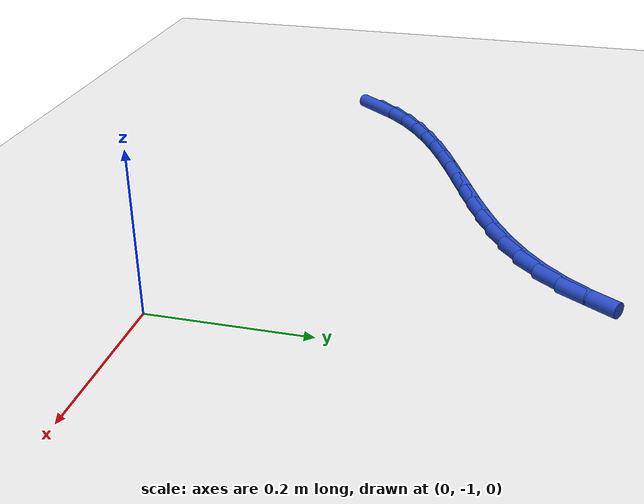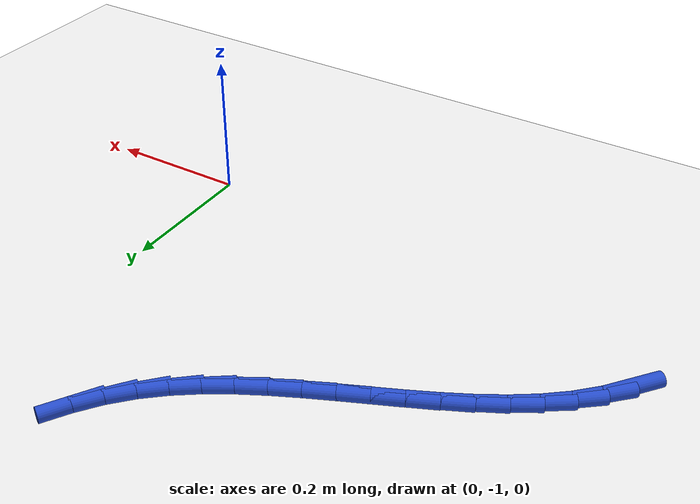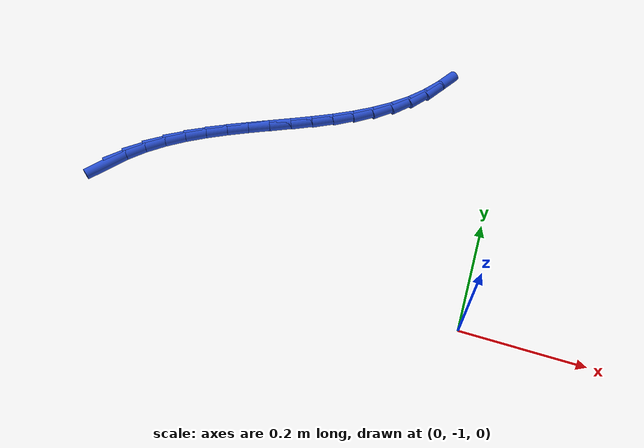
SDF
<sdf version="1.6">
 <world name="default">
  <model name="ground_plane">
   <static>1</static>
   <link name="link">
    <collision name="collision">
     <geometry><plane><normal>0 0 1</normal><size>100 100</size></plane></geometry>
     <surface><friction><ode><mu>100</mu><mu2>50</mu2></ode></friction></surface>
    </collision>
    <visual name="visual">
     <cast_shadows>0</cast_shadows>
     <geometry><plane><normal>0 0 1</normal><size>100 100</size></plane></geometry>
     <material>
      <script><uri>file://media/materials/scripts/gazebo.material</uri><name>Gazebo/WhiteGlow</name></script>
     </material>
    </visual>
   </link>
  </model>
  <model name="line">
   <link name="link_179">
    <pose>-0.6691251468968359 -0.8806108402283135 0.01 0 1.57 0.9010606598830255</pose>
    <collision name="collision">
     <geometry><cylinder><radius>0.01</radius><length>0.08</length></cylinder></geometry>
    </collision>
    <visual name="visual">
     <material>
      <script><name>Gazebo/Blue</name><uri>file://media/materials/scripts/gazebo.material</uri></script>
     </material>
     <geometry><cylinder><radius>0.01</radius><length>0.08</length></cylinder></geometry>
    </visual>
   </link>
   <link name="link_180">
    <pose>-0.645915633719968 -0.8512993863819421 0.01 0 1.57 0.7836660270477271</pose>
    <collision name="collision">
     <geometry><cylinder><radius>0.01</radius><length>0.08</length></cylinder></geometry>
    </collision>
    <visual name="visual">
     <material>
      <script><name>Gazebo/Blue</name><uri>file://media/materials/scripts/gazebo.material</uri></script>
     </material>
     <geometry><cylinder><radius>0.01</radius><length>0.08</length></cylinder></geometry>
    </visual>
   </link>
   <link name="link_181">
    <pose>-0.6195900926155167 -0.8250648865260314 0.01 0 1.57 0.6808556602758347</pose>
    <collision name="collision">
     <geometry><cylinder><radius>0.01</radius><length>0.08</length></cylinder></geometry>
    </collision>
    <visual name="visual">
     <material>
      <script><name>Gazebo/Blue</name><uri>file://media/materials/scripts/gazebo.material</uri></script>
     </material>
     <geometry><cylinder><radius>0.01</radius><length>0.08</length></cylinder></geometry>
    </visual>
   </link>
   <link name="link_182">
    <pose>-0.5905330021735388 -0.8015263895897069 0.01 0 1.57 0.5959423116595325</pose>
    <collision name="collision">
     <geometry><cylinder><radius>0.01</radius><length>0.08</length></cylinder></geometry>
    </collision>
    <visual name="visual">
     <material>
      <script><name>Gazebo/Blue</name><uri>file://media/materials/scripts/gazebo.material</uri></script>
     </material>
     <geometry><cylinder><radius>0.01</radius><length>0.08</length></cylinder></geometry>
    </visual>
   </link>
   <link name="link_183">
    <pose>-0.5591733542972394 -0.7802583891467804 0.01 0 1.57 0.52890403713709</pose>
    <collision name="collision">
     <geometry><cylinder><radius>0.01</radius><length>0.08</length></cylinder></geometry>
    </collision>
    <visual name="visual">
     <material>
      <script><name>Gazebo/Blue</name><uri>file://media/materials/scripts/gazebo.material</uri></script>
     </material>
     <geometry><cylinder><radius>0.01</radius><length>0.08</length></cylinder></geometry>
    </visual>
   </link>
   <link name="link_184">
    <pose>-0.5259401408898255 -0.7608353787710646 0.01 0 1.57 0.47886255338085687</pose>
    <collision name="collision">
     <geometry><cylinder><radius>0.01</radius><length>0.08</length></cylinder></geometry>
    </collision>
    <visual name="visual">
     <material>
      <script><name>Gazebo/Blue</name><uri>file://media/materials/scripts/gazebo.material</uri></script>
     </material>
     <geometry><cylinder><radius>0.01</radius><length>0.08</length></cylinder></geometry>
    </visual>
   </link>
   <link name="link_185">
    <pose>-0.4912623538545022 -0.7428318520363705 0.01 0 1.57 0.44470937518018533</pose>
    <collision name="collision">
     <geometry><cylinder><radius>0.01</radius><length>0.08</length></cylinder></geometry>
    </collision>
    <visual name="visual">
     <material>
      <script><name>Gazebo/Blue</name><uri>file://media/materials/scripts/gazebo.material</uri></script>
     </material>
     <geometry><cylinder><radius>0.01</radius><length>0.08</length></cylinder></geometry>
    </visual>
   </link>
   <link name="link_186">
    <pose>-0.455568985094475 -0.7258223025165105 0.01 0 1.57 0.4254890269414166</pose>
    <collision name="collision">
     <geometry><cylinder><radius>0.01</radius><length>0.08</length></cylinder></geometry>
    </collision>
    <visual name="visual">
     <material>
      <script><name>Gazebo/Blue</name><uri>file://media/materials/scripts/gazebo.material</uri></script>
     </material>
     <geometry><cylinder><radius>0.01</radius><length>0.08</length></cylinder></geometry>
    </visual>
   </link>
   <link name="link_187">
    <pose>-0.41928902651294986 -0.7093812237852961 0.01 0 1.57 0.4205970827737243</pose>
    <collision name="collision">
     <geometry><cylinder><radius>0.01</radius><length>0.08</length></cylinder></geometry>
    </collision>
    <visual name="visual">
     <material>
      <script><name>Gazebo/Blue</name><uri>file://media/materials/scripts/gazebo.material</uri></script>
     </material>
     <geometry><cylinder><radius>0.01</radius><length>0.08</length></cylinder></geometry>
    </visual>
   </link>
   <link name="link_188">
    <pose>-0.3828514700131325 -0.6930831094165395 0.01 0 1.57 0.429865067817776</pose>
    <collision name="collision">
     <geometry><cylinder><radius>0.01</radius><length>0.08</length></cylinder></geometry>
    </collision>
    <visual name="visual">
     <material>
      <script><name>Gazebo/Blue</name><uri>file://media/materials/scripts/gazebo.material</uri></script>
     </material>
     <geometry><cylinder><radius>0.01</radius><length>0.08</length></cylinder></geometry>
    </visual>
   </link>
   <link name="link_189">
    <pose>-0.3466853074982277 -0.6765024529840522 0.01 0 1.57 0.4535780765070565</pose>
    <collision name="collision">
     <geometry><cylinder><radius>0.01</radius><length>0.08</length></cylinder></geometry>
    </collision>
    <visual name="visual">
     <material>
      <script><name>Gazebo/Blue</name><uri>file://media/materials/scripts/gazebo.material</uri></script>
     </material>
     <geometry><cylinder><radius>0.01</radius><length>0.08</length></cylinder></geometry>
    </visual>
   </link>
   <link name="link_190">
    <pose>-0.31121953087144266 -0.6592137480616462 0.01 0 1.57 0.49243716299698326</pose>
    <collision name="collision">
     <geometry><cylinder><radius>0.01</radius><length>0.08</length></cylinder></geometry>
    </collision>
    <visual name="visual">
     <material>
      <script><name>Gazebo/Blue</name><uri>file://media/materials/scripts/gazebo.material</uri></script>
     </material>
     <geometry><cylinder><radius>0.01</radius><length>0.08</length></cylinder></geometry>
    </visual>
   </link>
   <link name="link_191">
    <pose>-0.2768831320359825 -0.6407914882231338 0.01 0 1.57 0.5474447593621856</pose>
    <collision name="collision">
     <geometry><cylinder><radius>0.01</radius><length>0.08</length></cylinder></geometry>
    </collision>
    <visual name="visual">
     <material>
      <script><name>Gazebo/Blue</name><uri>file://media/materials/scripts/gazebo.material</uri></script>
     </material>
     <geometry><cylinder><radius>0.01</radius><length>0.08</length></cylinder></geometry>
    </visual>
   </link>
   <link name="link_192">
    <pose>-0.24410510289505277 -0.6208101670423263 0.01 0 1.57 0.6196590242869909</pose>
    <collision name="collision">
     <geometry><cylinder><radius>0.01</radius><length>0.08</length></cylinder></geometry>
    </collision>
    <visual name="visual">
     <material>
      <script><name>Gazebo/Blue</name><uri>file://media/materials/scripts/gazebo.material</uri></script>
     </material>
     <geometry><cylinder><radius>0.01</radius><length>0.08</length></cylinder></geometry>
    </visual>
   </link>
   <link name="link_193">
    <pose>-0.21331443535185943 -0.5988442780930363 0.01 0 1.57 0.7097451021383752</pose>
    <collision name="collision">
     <geometry><cylinder><radius>0.01</radius><length>0.08</length></cylinder></geometry>
    </collision>
    <visual name="visual">
     <material>
      <script><name>Gazebo/Blue</name><uri>file://media/materials/scripts/gazebo.material</uri></script>
     </material>
     <geometry><cylinder><radius>0.01</radius><length>0.08</length></cylinder></geometry>
    </visual>
   </link>
   <link name="link_194">
    <pose>-0.18494012130960785 -0.5744683149490749 0.01 0 1.57 0.8163664158361579</pose>
    <collision name="collision">
     <geometry><cylinder><radius>0.01</radius><length>0.08</length></cylinder></geometry>
    </collision>
    <visual name="visual">
     <material>
      <script><name>Gazebo/Blue</name><uri>file://media/materials/scripts/gazebo.material</uri></script>
     </material>
     <geometry><cylinder><radius>0.01</radius><length>0.08</length></cylinder></geometry>
    </visual>
   </link>
   <link name="link_195">
    <pose>-0.15938917746663928 -0.5472837213970323 0.01 0 1.57 0.9226069725853064</pose>
    <collision name="collision">
     <geometry><cylinder><radius>0.01</radius><length>0.08</length></cylinder></geometry>
    </collision>
    <visual name="visual">
     <material>
      <script><name>Gazebo/Blue</name><uri>file://media/materials/scripts/gazebo.material</uri></script>
     </material>
     <geometry><cylinder><radius>0.01</radius><length>0.08</length></cylinder></geometry>
    </visual>
   </link>
   <link name="link_196">
    <pose>-0.13670741488696883 -0.5173349208799587 0.01 0 1.57 1.0150712039834593</pose>
    <collision name="collision">
     <geometry><cylinder><radius>0.01</radius><length>0.08</length></cylinder></geometry>
    </collision>
    <visual name="visual">
     <material>
      <script><name>Gazebo/Blue</name><uri>file://media/materials/scripts/gazebo.material</uri></script>
     </material>
     <geometry><cylinder><radius>0.01</radius><length>0.08</length></cylinder></geometry>
    </visual>
   </link>
  </model>
 </world>
</sdf>
